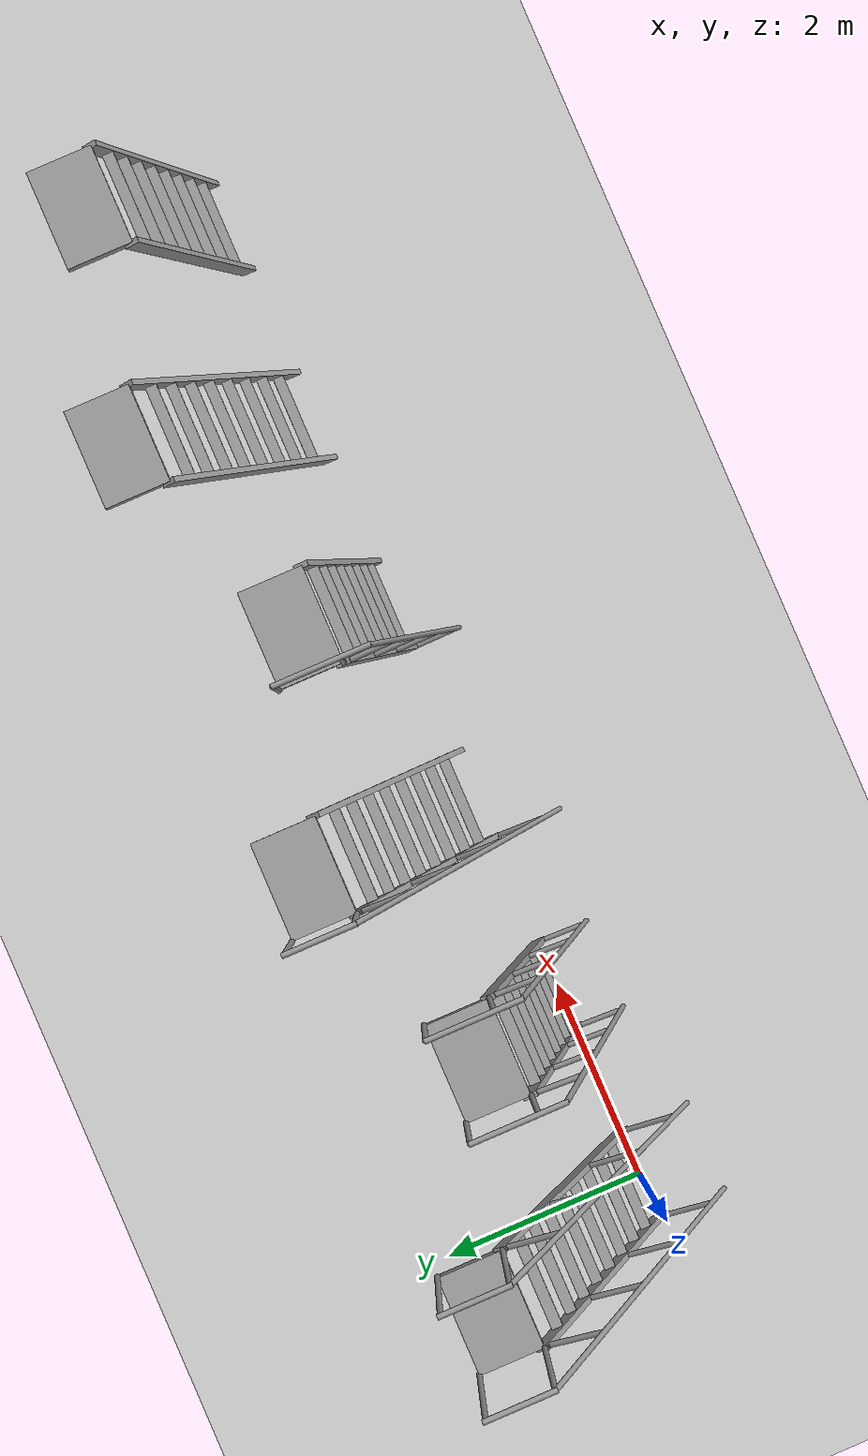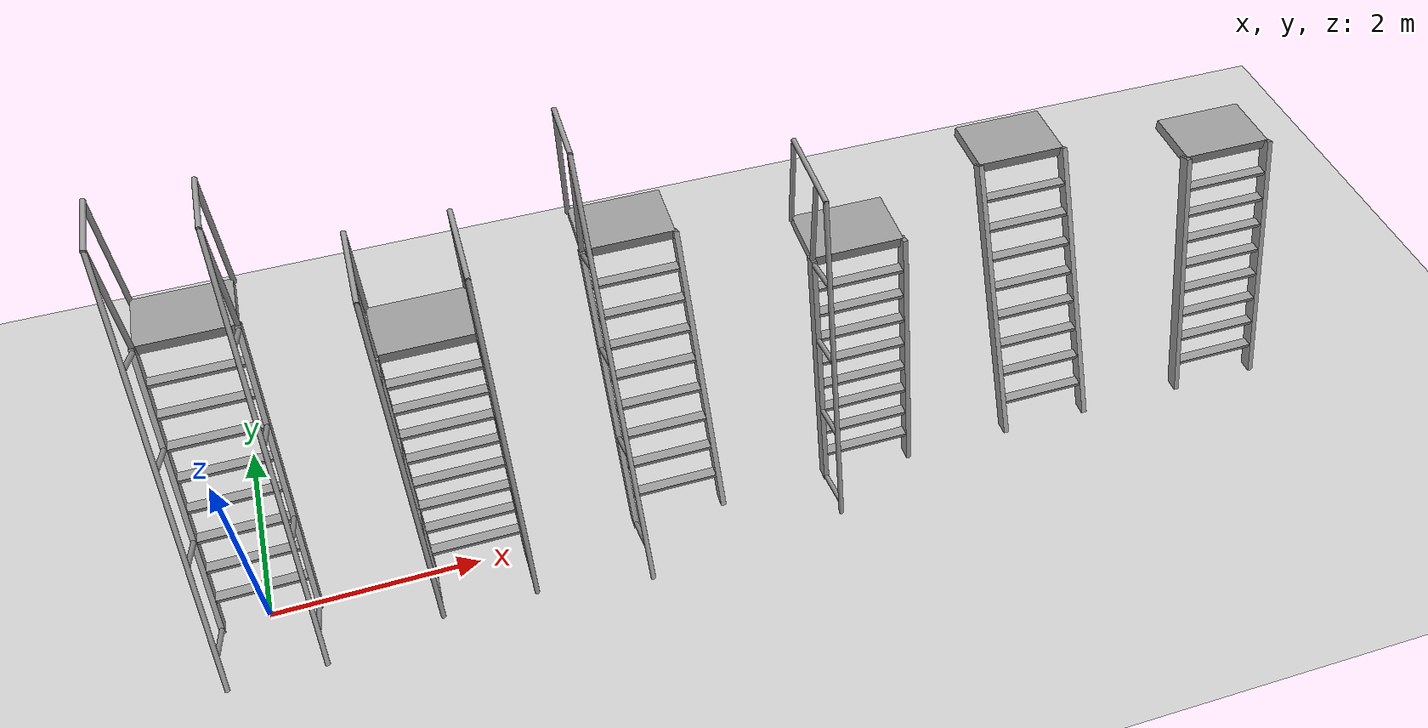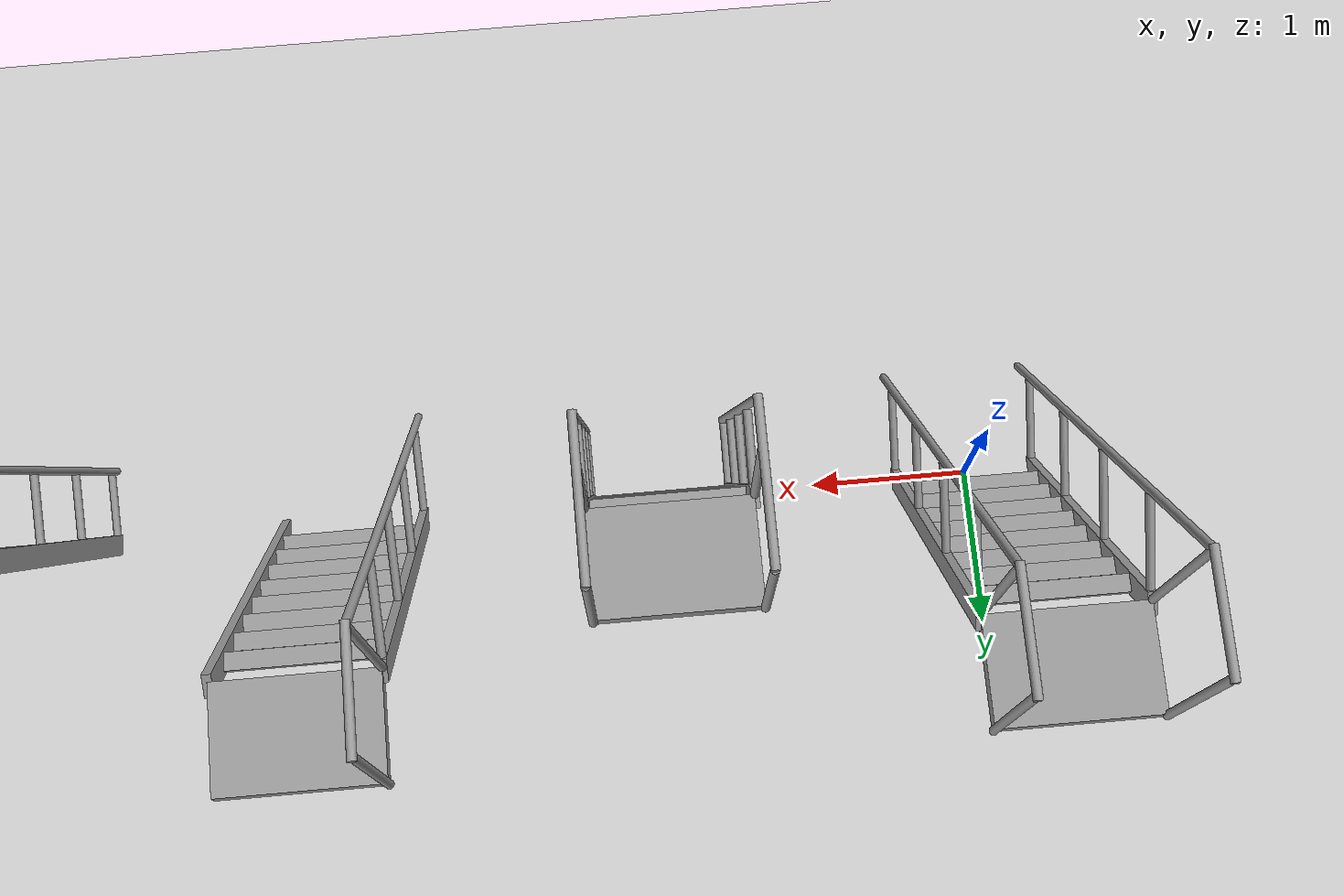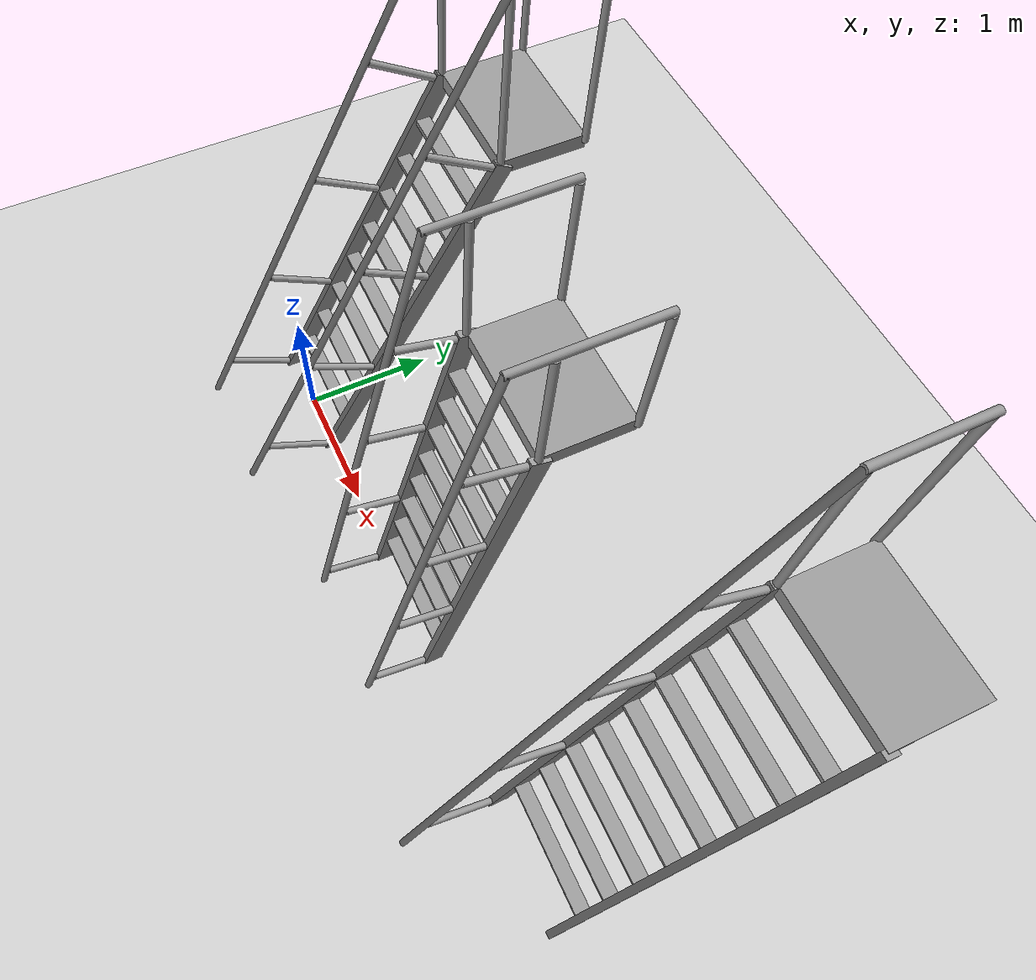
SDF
<?xml version="1.0" ?>
<sdf version="1.4">
  <world name="trials_task_3">
    <physics type="ode">
      <gravity>0 0 -9.81</gravity>
      <ode>
        <solver>
          <type>quick</type>
          <iters>50</iters>
          <sor>1.4</sor>
        </solver>
        <constraints>
          <cfm>0.0</cfm>
          <erp>0.2</erp>
          <contact_max_correcting_vel>100.0</contact_max_correcting_vel>
          <contact_surface_layer>0.0</contact_surface_layer>
        </constraints>
      </ode>
      <real_time_update_rate>1000</real_time_update_rate>
      <max_step_size>0.001</max_step_size>
    </physics>

    <!--A global light source -->
    <include>
      <uri>model://sun</uri>
    </include>

    <!-- A ground plane -->
    <include>
      <uri>model://ground_plane</uri>
    </include>

    <include>
      <name>ladder</name>
      <uri>model://ladder_60deg_2rails</uri>
    </include>

    <include>
      <name>ladder</name>
      <uri>model://ladder_75deg_2rails</uri>
      <pose>2 0 0 0 0 0</pose>
    </include>

    <include>
      <name>ladder</name>
      <uri>model://ladder_60deg_1rails</uri>
      <pose>4 0 0 0 0 0</pose>
    </include>

    <include>
      <name>ladder</name>
      <uri>model://ladder_75deg_1rails</uri>
      <pose>6 0 0 0 0 0</pose>
    </include>

    <include>
      <name>ladder</name>
      <uri>model://ladder_60deg_0rails</uri>
      <pose>8 0 0 0 0 0</pose>
    </include>

    <include>
      <name>ladder</name>
      <uri>model://ladder_75deg_0rails</uri>
      <pose>10 0 0 0 0 0</pose>
    </include>

    <plugin filename="libVRCPlugin.so" name="vrc_plugin">
      <atlas>
        <model_name>atlas</model_name>
        <pin_link>utorso</pin_link>
      </atlas>
      <drc_vehicle>
        <model_name>drc_vehicle_xp900</model_name>
        <seat_link>polaris_ranger_xp900::chassis</seat_link>
      </drc_vehicle>
      <drc_fire_hose>
        <fire_hose_model>fire_hose</fire_hose_model>
        <coupling_link>coupling</coupling_link>
        <standpipe_model>standpipe</standpipe_model>
        <spout_link>standpipe</spout_link>
        <thread_pitch>-1000</thread_pitch>
        <coupling_relative_pose>1.17038e-05 -0.125623 0.35 -0.0412152 -1.57078 1.61199</coupling_relative_pose>
      </drc_fire_hose>
    </plugin>

  </world>
</sdf>

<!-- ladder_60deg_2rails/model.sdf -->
<sdf version="1.5">

  <model name= "ladder_60deg_2rails" >
    <static>true</static>
         <link name="step0" >
           <pose>0 0.15396007178390025 0.26666666666666666 0 0 0 </pose>
           <inertial>
             <mass> 9.7548192</mass>
             <inertia>
             <ixx> 0.009571241631672</ixx>
             <iyy> 0.6596303120915761</iyy>
             <izz> 0.666841521540096</izz>
             <ixy>0</ixy>
             <ixz>0</ixz>
             <iyz>0</iyz>
             </inertia>
           </inertial>

           <collision name="collision">
             <geometry>
              <box>
                <size>  0.9  0.1016  0.0381  </size>
              </box>
             </geometry>
           </collision>

          <visual name="visual">
            <geometry>
              <box>
                <size>  0.9  0.1016  0.0381  </size>
              </box>
            </geometry>
            <material>
              <script>
                <uri>file://media/materials/scripts/gazebo.material</uri>
                <name>Gazebo/Grey</name>
              </script>
            </material>
          </visual>
        </link>
         <link name="step1" >
           <pose>0 0.3079201435678005 0.5333333333333333 0 0 0 </pose>
           <inertial>
             <mass> 9.7548192</mass>
             <inertia>
             <ixx> 0.009571241631672</ixx>
             <iyy> 0.6596303120915761</iyy>
             <izz> 0.666841521540096</izz>
             <ixy>0</ixy>
             <ixz>0</ixz>
             <iyz>0</iyz>
             </inertia>
           </inertial>

           <collision name="collision">
             <geometry>
              <box>
                <size>  0.9  0.1016  0.0381  </size>
              </box>
             </geometry>
           </collision>

          <visual name="visual">
            <geometry>
              <box>
                <size>  0.9  0.1016  0.0381  </size>
              </box>
            </geometry>
            <material>
              <script>
                <uri>file://media/materials/scripts/gazebo.material</uri>
                <name>Gazebo/Grey</name>
              </script>
            </material>
          </visual>
        </link>
         <link name="step2" >
           <pose>0 0.46188021535170076 0.8 0 0 0 </pose>
           <inertial>
             <mass> 9.7548192</mass>
             <inertia>
             <ixx> 0.009571241631672</ixx>
             <iyy> 0.6596303120915761</iyy>
             <izz> 0.666841521540096</izz>
             <ixy>0</ixy>
             <ixz>0</ixz>
             <iyz>0</iyz>
             </inertia>
           </inertial>

           <collision name="collision">
             <geometry>
              <box>
                <size>  0.9  0.1016  0.0381  </size>
              </box>
             </geometry>
           </collision>

          <visual name="visual">
            <geometry>
              <box>
                <size>  0.9  0.1016  0.0381  </size>
              </box>
            </geometry>
            <material>
              <script>
                <uri>file://media/materials/scripts/gazebo.material</uri>
                <name>Gazebo/Grey</name>
              </script>
            </material>
          </visual>
        </link>
         <link name="step3" >
           <pose>0 0.615840287135601 1.0666666666666667 0 0 0 </pose>
           <inertial>
             <mass> 9.7548192</mass>
             <inertia>
             <ixx> 0.009571241631672</ixx>
             <iyy> 0.6596303120915761</iyy>
             <izz> 0.666841521540096</izz>
             <ixy>0</ixy>
             <ixz>0</ixz>
             <iyz>0</iyz>
             </inertia>
           </inertial>

           <collision name="collision">
             <geometry>
              <box>
                <size>  0.9  0.1016  0.0381  </size>
              </box>
             </geometry>
           </collision>

          <visual name="visual">
            <geometry>
              <box>
                <size>  0.9  0.1016  0.0381  </size>
              </box>
            </geometry>
            <material>
              <script>
                <uri>file://media/materials/scripts/gazebo.material</uri>
                <name>Gazebo/Grey</name>
              </script>
            </material>
          </visual>
        </link>
         <link name="step4" >
           <pose>0 0.7698003589195013 1.3333333333333333 0 0 0 </pose>
           <inertial>
             <mass> 9.7548192</mass>
             <inertia>
             <ixx> 0.009571241631672</ixx>
             <iyy> 0.6596303120915761</iyy>
             <izz> 0.666841521540096</izz>
             <ixy>0</ixy>
             <ixz>0</ixz>
             <iyz>0</iyz>
             </inertia>
           </inertial>

           <collision name="collision">
             <geometry>
              <box>
                <size>  0.9  0.1016  0.0381  </size>
              </box>
             </geometry>
           </collision>

          <visual name="visual">
            <geometry>
              <box>
                <size>  0.9  0.1016  0.0381  </size>
              </box>
            </geometry>
            <material>
              <script>
                <uri>file://media/materials/scripts/gazebo.material</uri>
                <name>Gazebo/Grey</name>
              </script>
            </material>
          </visual>
        </link>
         <link name="step5" >
           <pose>0 0.9237604307034015 1.6 0 0 0 </pose>
           <inertial>
             <mass> 9.7548192</mass>
             <inertia>
             <ixx> 0.009571241631672</ixx>
             <iyy> 0.6596303120915761</iyy>
             <izz> 0.666841521540096</izz>
             <ixy>0</ixy>
             <ixz>0</ixz>
             <iyz>0</iyz>
             </inertia>
           </inertial>

           <collision name="collision">
             <geometry>
              <box>
                <size>  0.9  0.1016  0.0381  </size>
              </box>
             </geometry>
           </collision>

          <visual name="visual">
            <geometry>
              <box>
                <size>  0.9  0.1016  0.0381  </size>
              </box>
            </geometry>
            <material>
              <script>
                <uri>file://media/materials/scripts/gazebo.material</uri>
                <name>Gazebo/Grey</name>
              </script>
            </material>
          </visual>
        </link>
         <link name="step6" >
           <pose>0 1.0777205024873018 1.8666666666666667 0 0 0 </pose>
           <inertial>
             <mass> 9.7548192</mass>
             <inertia>
             <ixx> 0.009571241631672</ixx>
             <iyy> 0.6596303120915761</iyy>
             <izz> 0.666841521540096</izz>
             <ixy>0</ixy>
             <ixz>0</ixz>
             <iyz>0</iyz>
             </inertia>
           </inertial>

           <collision name="collision">
             <geometry>
              <box>
                <size>  0.9  0.1016  0.0381  </size>
              </box>
             </geometry>
           </collision>

          <visual name="visual">
            <geometry>
              <box>
                <size>  0.9  0.1016  0.0381  </size>
              </box>
            </geometry>
            <material>
              <script>
                <uri>file://media/materials/scripts/gazebo.material</uri>
                <name>Gazebo/Grey</name>
              </script>
            </material>
          </visual>
        </link>
         <link name="step7" >
           <pose>0 1.231680574271202 2.1333333333333333 0 0 0 </pose>
           <inertial>
             <mass> 9.7548192</mass>
             <inertia>
             <ixx> 0.009571241631672</ixx>
             <iyy> 0.6596303120915761</iyy>
             <izz> 0.666841521540096</izz>
             <ixy>0</ixy>
             <ixz>0</ixz>
             <iyz>0</iyz>
             </inertia>
           </inertial>

           <collision name="collision">
             <geometry>
              <box>
                <size>  0.9  0.1016  0.0381  </size>
              </box>
             </geometry>
           </collision>

          <visual name="visual">
            <geometry>
              <box>
                <size>  0.9  0.1016  0.0381  </size>
              </box>
            </geometry>
            <material>
              <script>
                <uri>file://media/materials/scripts/gazebo.material</uri>
                <name>Gazebo/Grey</name>
              </script>
            </material>
          </visual>
        </link>
    <link name="landing">
      <pose>0 1.6856406460551023 2.4 0 0 0 </pose>
        <inertial>
          <mass> 57.607200000000006</mass>
          <inertia>
          <ixx> 1.735184598966</ixx>
          <iyy> 3.8954545989660008</iyy>
          <izz> 5.616702</izz>
          <ixy>0</ixy>
          <ixz>0</ixz>
          <iyz>0</iyz>
          </inertia>
        </inertial>

        <collision name="collision">
          <geometry>
           <box>
             <size> 0.9 0.6 0.1016</size>
           </box>
          </geometry>
        </collision>

        <visual name="visual">
          <geometry>
            <box>
             <size> 0.9 0.6 0.1016</size>
            </box>
          </geometry>
          <material>
            <script>
              <uri>file://media/materials/scripts/gazebo.material</uri>
              <name>Gazebo/Grey</name>
            </script>
          </material>
        </visual>
    </link>

      <link name="left_side_wall" >
        <pose>-0.45 0.6928203230275511 1.2 1.0471975511965976 0 0 </pose>
        <collision name="collision">
          <geometry>
            <box>
              <size> 0.0508  2.851281292110204  0.13 </size>
            </box>
          </geometry>
        </collision>

        <visual name="visual">
          <geometry>
            <box>
              <size> 0.0508  2.851281292110204  0.13 </size>
            </box>
          </geometry>
          <material>
            <script>
              <uri>file://media/materials/scripts/gazebo.material</uri>
              <name>Gazebo/Grey</name>
            </script>
          </material>
        </visual>

      </link>
      <link name="right_side_wall" >
        <pose>0.45 0.6928203230275511 1.2 1.0471975511965976 0 0 </pose>
        <collision name="collision">
          <geometry>
            <box>
              <size> 0.0508  2.851281292110204  0.13 </size>
            </box>
          </geometry>
        </collision>

        <visual name="visual">
          <geometry>
            <box>
              <size> 0.0508  2.851281292110204  0.13 </size>
            </box>
          </geometry>
          <material>
            <script>
              <uri>file://media/materials/scripts/gazebo.material</uri>
              <name>Gazebo/Grey</name>
            </script>
          </material>
        </visual>

      </link>
         <link name="left_railing_long" >
           <pose>-0.45 0.34282032302755117 1.8062177826491068 -0.5235987755982989 0 0 </pose>

            <collision name="collision">
              <geometry>
                <cylinder>
                  <radius>0.02413</radius>
                  <length>4.171281292110204</length>
                </cylinder>
              </geometry>
            </collision>

            <visual name="visual">
              <geometry>
                <cylinder>
                  <radius>0.02413</radius>
                  <length>4.171281292110204</length>
                </cylinder>
              </geometry>
              <material>
                <script>
                  <uri>file://media/materials/scripts/gazebo.material</uri>
                  <name>Gazebo/Grey</name>
                </script>
              </material>
            </visual>
         </link>
              <link name="left_railing_upright0" >
                <pose> -0.45 -0.2749630657015592 0.15875 1.0471975511965976 0 0 </pose>

                <collision name="collision">
                  <geometry>
                    <cylinder>
                      <radius>0.02413</radius>
                      <length>0.5412177826491069</length>
                    </cylinder>
                  </geometry>
                </collision>

                <visual name="visual">
                  <geometry>
                    <cylinder>
                      <radius>0.02413</radius>
                      <length>0.5412177826491069</length>
                    </cylinder>
                  </geometry>
                  <material>
                    <script>
                      <uri>file://media/materials/scripts/gazebo.material</uri>
                      <name>Gazebo/Grey</name>
                    </script>
                  </material>
                </visual>
              </link>
              <link name="left_railing_upright1" >
                <pose> -0.45 0.18691714965014153 0.95875 1.0471975511965976 0 0 </pose>

                <collision name="collision">
                  <geometry>
                    <cylinder>
                      <radius>0.02413</radius>
                      <length>0.5412177826491069</length>
                    </cylinder>
                  </geometry>
                </collision>

                <visual name="visual">
                  <geometry>
                    <cylinder>
                      <radius>0.02413</radius>
                      <length>0.5412177826491069</length>
                    </cylinder>
                  </geometry>
                  <material>
                    <script>
                      <uri>file://media/materials/scripts/gazebo.material</uri>
                      <name>Gazebo/Grey</name>
                    </script>
                  </material>
                </visual>
              </link>
              <link name="left_railing_upright2" >
                <pose> -0.45 0.6487973650018424 1.7587499999999998 1.0471975511965976 0 0 </pose>

                <collision name="collision">
                  <geometry>
                    <cylinder>
                      <radius>0.02413</radius>
                      <length>0.5412177826491069</length>
                    </cylinder>
                  </geometry>
                </collision>

                <visual name="visual">
                  <geometry>
                    <cylinder>
                      <radius>0.02413</radius>
                      <length>0.5412177826491069</length>
                    </cylinder>
                  </geometry>
                  <material>
                    <script>
                      <uri>file://media/materials/scripts/gazebo.material</uri>
                      <name>Gazebo/Grey</name>
                    </script>
                  </material>
                </visual>
              </link>
              <link name="left_railing_upright3" >
                <pose> -0.45 1.1106775803535431 2.55875 1.0471975511965976 0 0 </pose>

                <collision name="collision">
                  <geometry>
                    <cylinder>
                      <radius>0.02413</radius>
                      <length>0.5412177826491069</length>
                    </cylinder>
                  </geometry>
                </collision>

                <visual name="visual">
                  <geometry>
                    <cylinder>
                      <radius>0.02413</radius>
                      <length>0.5412177826491069</length>
                    </cylinder>
                  </geometry>
                  <material>
                    <script>
                      <uri>file://media/materials/scripts/gazebo.material</uri>
                      <name>Gazebo/Grey</name>
                    </script>
                  </material>
                </visual>
              </link>

         <link name="left_railing_landing_top" >

           <pose> -0.45 1.6856406460551023 3.6124355652982136 1.5707963267948966 0 0 </pose>

           <collision name="collision">
             <geometry>
               <cylinder>
                 <radius>0.02413</radius>
                 <length>0.64826</length>
               </cylinder>
             </geometry>
           </collision>

           <visual name="visual">
             <geometry>
               <cylinder>
                 <radius>0.02413</radius>
                 <length>0.64826</length>
               </cylinder>
             </geometry>
             <material>
               <script>
                 <uri>file://media/materials/scripts/gazebo.material</uri>
                 <name>Gazebo/Grey</name>
               </script>
             </material>
           </visual>
         </link>

            <link name="left_railing_landing_upright_0">
              <pose>-0.45 1.3856406460551023 3.0062177826491068 0 0 0</pose>
              <collision name="collision">
                <geometry>
                  <cylinder>
                    <radius>0.02413</radius>
                    <length>1.2124355652982137</length>
                  </cylinder>
                </geometry>
              </collision>

              <visual name="visual">
                <geometry>
                  <cylinder>
                    <radius>0.02413</radius>
                    <length>1.2124355652982137</length>
                  </cylinder>
                </geometry>
                <material>
                  <script>
                    <uri>file://media/materials/scripts/gazebo.material</uri>
                    <name>Gazebo/Grey</name>
                  </script>
                </material>
              </visual>
            </link>
            <link name="left_railing_landing_upright_1">
              <pose>-0.45 1.9856406460551024 3.0062177826491068 0 0 0</pose>
              <collision name="collision">
                <geometry>
                  <cylinder>
                    <radius>0.02413</radius>
                    <length>1.2124355652982137</length>
                  </cylinder>
                </geometry>
              </collision>

              <visual name="visual">
                <geometry>
                  <cylinder>
                    <radius>0.02413</radius>
                    <length>1.2124355652982137</length>
                  </cylinder>
                </geometry>
                <material>
                  <script>
                    <uri>file://media/materials/scripts/gazebo.material</uri>
                    <name>Gazebo/Grey</name>
                  </script>
                </material>
              </visual>
            </link>

         <link name="right_railing_long" >
           <pose>0.45 0.34282032302755117 1.8062177826491068 -0.5235987755982989 0 0 </pose>

            <collision name="collision">
              <geometry>
                <cylinder>
                  <radius>0.02413</radius>
                  <length>4.171281292110204</length>
                </cylinder>
              </geometry>
            </collision>

            <visual name="visual">
              <geometry>
                <cylinder>
                  <radius>0.02413</radius>
                  <length>4.171281292110204</length>
                </cylinder>
              </geometry>
              <material>
                <script>
                  <uri>file://media/materials/scripts/gazebo.material</uri>
                  <name>Gazebo/Grey</name>
                </script>
              </material>
            </visual>
         </link>
              <link name="right_railing_upright0" >
                <pose> 0.45 -0.2749630657015592 0.15875 1.0471975511965976 0 0 </pose>

                <collision name="collision">
                  <geometry>
                    <cylinder>
                      <radius>0.02413</radius>
                      <length>0.5412177826491069</length>
                    </cylinder>
                  </geometry>
                </collision>

                <visual name="visual">
                  <geometry>
                    <cylinder>
                      <radius>0.02413</radius>
                      <length>0.5412177826491069</length>
                    </cylinder>
                  </geometry>
                  <material>
                    <script>
                      <uri>file://media/materials/scripts/gazebo.material</uri>
                      <name>Gazebo/Grey</name>
                    </script>
                  </material>
                </visual>
              </link>
              <link name="right_railing_upright1" >
                <pose> 0.45 0.18691714965014153 0.95875 1.0471975511965976 0 0 </pose>

                <collision name="collision">
                  <geometry>
                    <cylinder>
                      <radius>0.02413</radius>
                      <length>0.5412177826491069</length>
                    </cylinder>
                  </geometry>
                </collision>

                <visual name="visual">
                  <geometry>
                    <cylinder>
                      <radius>0.02413</radius>
                      <length>0.5412177826491069</length>
                    </cylinder>
                  </geometry>
                  <material>
                    <script>
                      <uri>file://media/materials/scripts/gazebo.material</uri>
                      <name>Gazebo/Grey</name>
                    </script>
                  </material>
                </visual>
              </link>
              <link name="right_railing_upright2" >
                <pose> 0.45 0.6487973650018424 1.7587499999999998 1.0471975511965976 0 0 </pose>

                <collision name="collision">
                  <geometry>
                    <cylinder>
                      <radius>0.02413</radius>
                      <length>0.5412177826491069</length>
                    </cylinder>
                  </geometry>
                </collision>

                <visual name="visual">
                  <geometry>
                    <cylinder>
                      <radius>0.02413</radius>
                      <length>0.5412177826491069</length>
                    </cylinder>
                  </geometry>
                  <material>
                    <script>
                      <uri>file://media/materials/scripts/gazebo.material</uri>
                      <name>Gazebo/Grey</name>
                    </script>
                  </material>
                </visual>
              </link>
              <link name="right_railing_upright3" >
                <pose> 0.45 1.1106775803535431 2.55875 1.0471975511965976 0 0 </pose>

                <collision name="collision">
                  <geometry>
                    <cylinder>
                      <radius>0.02413</radius>
                      <length>0.5412177826491069</length>
                    </cylinder>
                  </geometry>
                </collision>

                <visual name="visual">
                  <geometry>
                    <cylinder>
                      <radius>0.02413</radius>
                      <length>0.5412177826491069</length>
                    </cylinder>
                  </geometry>
                  <material>
                    <script>
                      <uri>file://media/materials/scripts/gazebo.material</uri>
                      <name>Gazebo/Grey</name>
                    </script>
                  </material>
                </visual>
              </link>

         <link name="right_railing_landing_top" >

           <pose> 0.45 1.6856406460551023 3.6124355652982136 1.5707963267948966 0 0 </pose>

           <collision name="collision">
             <geometry>
               <cylinder>
                 <radius>0.02413</radius>
                 <length>0.64826</length>
               </cylinder>
             </geometry>
           </collision>

           <visual name="visual">
             <geometry>
               <cylinder>
                 <radius>0.02413</radius>
                 <length>0.64826</length>
               </cylinder>
             </geometry>
             <material>
               <script>
                 <uri>file://media/materials/scripts/gazebo.material</uri>
                 <name>Gazebo/Grey</name>
               </script>
             </material>
           </visual>
         </link>

            <link name="right_railing_landing_upright_0">
              <pose>0.45 1.3856406460551023 3.0062177826491068 0 0 0</pose>
              <collision name="collision">
                <geometry>
                  <cylinder>
                    <radius>0.02413</radius>
                    <length>1.2124355652982137</length>
                  </cylinder>
                </geometry>
              </collision>

              <visual name="visual">
                <geometry>
                  <cylinder>
                    <radius>0.02413</radius>
                    <length>1.2124355652982137</length>
                  </cylinder>
                </geometry>
                <material>
                  <script>
                    <uri>file://media/materials/scripts/gazebo.material</uri>
                    <name>Gazebo/Grey</name>
                  </script>
                </material>
              </visual>
            </link>
            <link name="right_railing_landing_upright_1">
              <pose>0.45 1.9856406460551024 3.0062177826491068 0 0 0</pose>
              <collision name="collision">
                <geometry>
                  <cylinder>
                    <radius>0.02413</radius>
                    <length>1.2124355652982137</length>
                  </cylinder>
                </geometry>
              </collision>

              <visual name="visual">
                <geometry>
                  <cylinder>
                    <radius>0.02413</radius>
                    <length>1.2124355652982137</length>
                  </cylinder>
                </geometry>
                <material>
                  <script>
                    <uri>file://media/materials/scripts/gazebo.material</uri>
                    <name>Gazebo/Grey</name>
                  </script>
                </material>
              </visual>
            </link>

  </model>
</sdf>

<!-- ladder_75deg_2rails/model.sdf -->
<sdf version="1.5">

  <model name= "ladder_75deg_2rails" >
    <static>true</static>
         <link name="step0" >
           <pose>0 0.07145311798163272 0.26666666666666666 0 0 0 </pose>
           <inertial>
             <mass> 9.7548192</mass>
             <inertia>
             <ixx> 0.009571241631672</ixx>
             <iyy> 0.6596303120915761</iyy>
             <izz> 0.666841521540096</izz>
             <ixy>0</ixy>
             <ixz>0</ixz>
             <iyz>0</iyz>
             </inertia>
           </inertial>

           <collision name="collision">
             <geometry>
              <box>
                <size>  0.9  0.1016  0.0381  </size>
              </box>
             </geometry>
           </collision>

          <visual name="visual">
            <geometry>
              <box>
                <size>  0.9  0.1016  0.0381  </size>
              </box>
            </geometry>
            <material>
              <script>
                <uri>file://media/materials/scripts/gazebo.material</uri>
                <name>Gazebo/Grey</name>
              </script>
            </material>
          </visual>
        </link>
         <link name="step1" >
           <pose>0 0.14290623596326543 0.5333333333333333 0 0 0 </pose>
           <inertial>
             <mass> 9.7548192</mass>
             <inertia>
             <ixx> 0.009571241631672</ixx>
             <iyy> 0.6596303120915761</iyy>
             <izz> 0.666841521540096</izz>
             <ixy>0</ixy>
             <ixz>0</ixz>
             <iyz>0</iyz>
             </inertia>
           </inertial>

           <collision name="collision">
             <geometry>
              <box>
                <size>  0.9  0.1016  0.0381  </size>
              </box>
             </geometry>
           </collision>

          <visual name="visual">
            <geometry>
              <box>
                <size>  0.9  0.1016  0.0381  </size>
              </box>
            </geometry>
            <material>
              <script>
                <uri>file://media/materials/scripts/gazebo.material</uri>
                <name>Gazebo/Grey</name>
              </script>
            </material>
          </visual>
        </link>
         <link name="step2" >
           <pose>0 0.21435935394489813 0.8 0 0 0 </pose>
           <inertial>
             <mass> 9.7548192</mass>
             <inertia>
             <ixx> 0.009571241631672</ixx>
             <iyy> 0.6596303120915761</iyy>
             <izz> 0.666841521540096</izz>
             <ixy>0</ixy>
             <ixz>0</ixz>
             <iyz>0</iyz>
             </inertia>
           </inertial>

           <collision name="collision">
             <geometry>
              <box>
                <size>  0.9  0.1016  0.0381  </size>
              </box>
             </geometry>
           </collision>

          <visual name="visual">
            <geometry>
              <box>
                <size>  0.9  0.1016  0.0381  </size>
              </box>
            </geometry>
            <material>
              <script>
                <uri>file://media/materials/scripts/gazebo.material</uri>
                <name>Gazebo/Grey</name>
              </script>
            </material>
          </visual>
        </link>
         <link name="step3" >
           <pose>0 0.28581247192653086 1.0666666666666667 0 0 0 </pose>
           <inertial>
             <mass> 9.7548192</mass>
             <inertia>
             <ixx> 0.009571241631672</ixx>
             <iyy> 0.6596303120915761</iyy>
             <izz> 0.666841521540096</izz>
             <ixy>0</ixy>
             <ixz>0</ixz>
             <iyz>0</iyz>
             </inertia>
           </inertial>

           <collision name="collision">
             <geometry>
              <box>
                <size>  0.9  0.1016  0.0381  </size>
              </box>
             </geometry>
           </collision>

          <visual name="visual">
            <geometry>
              <box>
                <size>  0.9  0.1016  0.0381  </size>
              </box>
            </geometry>
            <material>
              <script>
                <uri>file://media/materials/scripts/gazebo.material</uri>
                <name>Gazebo/Grey</name>
              </script>
            </material>
          </visual>
        </link>
         <link name="step4" >
           <pose>0 0.3572655899081636 1.3333333333333333 0 0 0 </pose>
           <inertial>
             <mass> 9.7548192</mass>
             <inertia>
             <ixx> 0.009571241631672</ixx>
             <iyy> 0.6596303120915761</iyy>
             <izz> 0.666841521540096</izz>
             <ixy>0</ixy>
             <ixz>0</ixz>
             <iyz>0</iyz>
             </inertia>
           </inertial>

           <collision name="collision">
             <geometry>
              <box>
                <size>  0.9  0.1016  0.0381  </size>
              </box>
             </geometry>
           </collision>

          <visual name="visual">
            <geometry>
              <box>
                <size>  0.9  0.1016  0.0381  </size>
              </box>
            </geometry>
            <material>
              <script>
                <uri>file://media/materials/scripts/gazebo.material</uri>
                <name>Gazebo/Grey</name>
              </script>
            </material>
          </visual>
        </link>
         <link name="step5" >
           <pose>0 0.42871870788979627 1.6 0 0 0 </pose>
           <inertial>
             <mass> 9.7548192</mass>
             <inertia>
             <ixx> 0.009571241631672</ixx>
             <iyy> 0.6596303120915761</iyy>
             <izz> 0.666841521540096</izz>
             <ixy>0</ixy>
             <ixz>0</ixz>
             <iyz>0</iyz>
             </inertia>
           </inertial>

           <collision name="collision">
             <geometry>
              <box>
                <size>  0.9  0.1016  0.0381  </size>
              </box>
             </geometry>
           </collision>

          <visual name="visual">
            <geometry>
              <box>
                <size>  0.9  0.1016  0.0381  </size>
              </box>
            </geometry>
            <material>
              <script>
                <uri>file://media/materials/scripts/gazebo.material</uri>
                <name>Gazebo/Grey</name>
              </script>
            </material>
          </visual>
        </link>
         <link name="step6" >
           <pose>0 0.500171825871429 1.8666666666666667 0 0 0 </pose>
           <inertial>
             <mass> 9.7548192</mass>
             <inertia>
             <ixx> 0.009571241631672</ixx>
             <iyy> 0.6596303120915761</iyy>
             <izz> 0.666841521540096</izz>
             <ixy>0</ixy>
             <ixz>0</ixz>
             <iyz>0</iyz>
             </inertia>
           </inertial>

           <collision name="collision">
             <geometry>
              <box>
                <size>  0.9  0.1016  0.0381  </size>
              </box>
             </geometry>
           </collision>

          <visual name="visual">
            <geometry>
              <box>
                <size>  0.9  0.1016  0.0381  </size>
              </box>
            </geometry>
            <material>
              <script>
                <uri>file://media/materials/scripts/gazebo.material</uri>
                <name>Gazebo/Grey</name>
              </script>
            </material>
          </visual>
        </link>
         <link name="step7" >
           <pose>0 0.5716249438530617 2.1333333333333333 0 0 0 </pose>
           <inertial>
             <mass> 9.7548192</mass>
             <inertia>
             <ixx> 0.009571241631672</ixx>
             <iyy> 0.6596303120915761</iyy>
             <izz> 0.666841521540096</izz>
             <ixy>0</ixy>
             <ixz>0</ixz>
             <iyz>0</iyz>
             </inertia>
           </inertial>

           <collision name="collision">
             <geometry>
              <box>
                <size>  0.9  0.1016  0.0381  </size>
              </box>
             </geometry>
           </collision>

          <visual name="visual">
            <geometry>
              <box>
                <size>  0.9  0.1016  0.0381  </size>
              </box>
            </geometry>
            <material>
              <script>
                <uri>file://media/materials/scripts/gazebo.material</uri>
                <name>Gazebo/Grey</name>
              </script>
            </material>
          </visual>
        </link>
    <link name="landing">
      <pose>0 0.9430780618346943 2.4 0 0 0 </pose>
        <inertial>
          <mass> 57.607200000000006</mass>
          <inertia>
          <ixx> 1.735184598966</ixx>
          <iyy> 3.8954545989660008</iyy>
          <izz> 5.616702</izz>
          <ixy>0</ixy>
          <ixz>0</ixz>
          <iyz>0</iyz>
          </inertia>
        </inertial>

        <collision name="collision">
          <geometry>
           <box>
             <size> 0.9 0.6 0.1016</size>
           </box>
          </geometry>
        </collision>

        <visual name="visual">
          <geometry>
            <box>
             <size> 0.9 0.6 0.1016</size>
            </box>
          </geometry>
          <material>
            <script>
              <uri>file://media/materials/scripts/gazebo.material</uri>
              <name>Gazebo/Grey</name>
            </script>
          </material>
        </visual>
    </link>

      <link name="left_side_wall" >
        <pose>-0.45 0.3215390309173472 1.2 1.3089969389957472 0 0 </pose>
        <collision name="collision">
          <geometry>
            <box>
              <size> 0.0508  2.564662832984199  0.13 </size>
            </box>
          </geometry>
        </collision>

        <visual name="visual">
          <geometry>
            <box>
              <size> 0.0508  2.564662832984199  0.13 </size>
            </box>
          </geometry>
          <material>
            <script>
              <uri>file://media/materials/scripts/gazebo.material</uri>
              <name>Gazebo/Grey</name>
            </script>
          </material>
        </visual>

      </link>
      <link name="right_side_wall" >
        <pose>0.45 0.3215390309173472 1.2 1.3089969389957472 0 0 </pose>
        <collision name="collision">
          <geometry>
            <box>
              <size> 0.0508  2.564662832984199  0.13 </size>
            </box>
          </geometry>
        </collision>

        <visual name="visual">
          <geometry>
            <box>
              <size> 0.0508  2.564662832984199  0.13 </size>
            </box>
          </geometry>
          <material>
            <script>
              <uri>file://media/materials/scripts/gazebo.material</uri>
              <name>Gazebo/Grey</name>
            </script>
          </material>
        </visual>

      </link>

         <link name="left_railing_long" >
           <pose>-0.45 -0.0534609690826528 1.6665063509461095 -0.26179938779914935 0 0 </pose>

            <collision name="collision">
              <geometry>
                <cylinder>
                  <radius>0.02413</radius>
                  <length>3.5152934205488977</length>
                </cylinder>
              </geometry>
            </collision>

            <visual name="visual">
              <geometry>
                <cylinder>
                  <radius>0.02413</radius>
                  <length>3.5152934205488977</length>
                </cylinder>
              </geometry>
              <material>
                <script>
                  <uri>file://media/materials/scripts/gazebo.material</uri>
                  <name>Gazebo/Grey</name>
                </script>
              </material>
            </visual>
         </link>

              <link name="left_railing_upright0" >
                <pose> -0.45 -0.21008886721787234 0.05629314230979826 1.3089969389957472 0 0 </pose>

                <collision name="collision">
                  <geometry>
                    <cylinder>
                      <radius>0.02413</radius>
                      <length>0.48296291314453416</length>
                    </cylinder>
                  </geometry>
                </collision>

                <visual name="visual">
                  <geometry>
                    <cylinder>
                      <radius>0.02413</radius>
                      <length>0.48296291314453416</length>
                    </cylinder>
                  </geometry>
                  <material>
                    <script>
                      <uri>file://media/materials/scripts/gazebo.material</uri>
                      <name>Gazebo/Grey</name>
                    </script>
                  </material>
                </visual>
              </link>
              <link name="left_railing_upright1" >
                <pose> -0.45 0.004270486727025777 0.8562931423097981 1.3089969389957472 0 0 </pose>

                <collision name="collision">
                  <geometry>
                    <cylinder>
                      <radius>0.02413</radius>
                      <length>0.48296291314453416</length>
                    </cylinder>
                  </geometry>
                </collision>

                <visual name="visual">
                  <geometry>
                    <cylinder>
                      <radius>0.02413</radius>
                      <length>0.48296291314453416</length>
                    </cylinder>
                  </geometry>
                  <material>
                    <script>
                      <uri>file://media/materials/scripts/gazebo.material</uri>
                      <name>Gazebo/Grey</name>
                    </script>
                  </material>
                </visual>
              </link>
              <link name="left_railing_upright2" >
                <pose> -0.45 0.21862984067192393 1.6562931423097982 1.3089969389957472 0 0 </pose>

                <collision name="collision">
                  <geometry>
                    <cylinder>
                      <radius>0.02413</radius>
                      <length>0.48296291314453416</length>
                    </cylinder>
                  </geometry>
                </collision>

                <visual name="visual">
                  <geometry>
                    <cylinder>
                      <radius>0.02413</radius>
                      <length>0.48296291314453416</length>
                    </cylinder>
                  </geometry>
                  <material>
                    <script>
                      <uri>file://media/materials/scripts/gazebo.material</uri>
                      <name>Gazebo/Grey</name>
                    </script>
                  </material>
                </visual>
              </link>
              <link name="left_railing_upright3" >
                <pose> -0.45 0.43298919461682206 2.4562931423097982 1.3089969389957472 0 0 </pose>

                <collision name="collision">
                  <geometry>
                    <cylinder>
                      <radius>0.02413</radius>
                      <length>0.48296291314453416</length>
                    </cylinder>
                  </geometry>
                </collision>

                <visual name="visual">
                  <geometry>
                    <cylinder>
                      <radius>0.02413</radius>
                      <length>0.48296291314453416</length>
                    </cylinder>
                  </geometry>
                  <material>
                    <script>
                      <uri>file://media/materials/scripts/gazebo.material</uri>
                      <name>Gazebo/Grey</name>
                    </script>
                  </material>
                </visual>
              </link>

         <link name="left_railing_landing_top" >

           <pose> -0.45 0.8180780618346943 3.357142701892219 1.5707963267948966 0 0 </pose>

           <collision name="collision">
             <geometry>
               <cylinder>
                 <radius>0.02413</radius>
                 <length>0.87413</length>
               </cylinder>
             </geometry>
           </collision>

           <visual name="visual">
             <geometry>
               <cylinder>
                 <radius>0.02413</radius>
                 <length>0.87413</length>
               </cylinder>
             </geometry>
             <material>
               <script>
                 <uri>file://media/materials/scripts/gazebo.material</uri>
                 <name>Gazebo/Grey</name>
               </script>
             </material>
           </visual>
         </link>

            <link name="left_railing_landing_upright_0">
              <pose>-0.45 0.6430780618346944 2.8665063509461097 0 0 0</pose>
              <collision name="collision">
                <geometry>
                  <cylinder>
                    <radius>0.02413</radius>
                    <length>0.9330127018922194</length>
                  </cylinder>
                </geometry>
              </collision>

              <visual name="visual">
                <geometry>
                  <cylinder>
                    <radius>0.02413</radius>
                    <length>0.9330127018922194</length>
                  </cylinder>
                </geometry>
                <material>
                  <script>
                    <uri>file://media/materials/scripts/gazebo.material</uri>
                    <name>Gazebo/Grey</name>
                  </script>
                </material>
              </visual>
            </link>
            <link name="left_railing_landing_upright_1">
              <pose>-0.45 1.2430780618346944 2.8665063509461097 0 0 0</pose>
              <collision name="collision">
                <geometry>
                  <cylinder>
                    <radius>0.02413</radius>
                    <length>0.9330127018922194</length>
                  </cylinder>
                </geometry>
              </collision>

              <visual name="visual">
                <geometry>
                  <cylinder>
                    <radius>0.02413</radius>
                    <length>0.9330127018922194</length>
                  </cylinder>
                </geometry>
                <material>
                  <script>
                    <uri>file://media/materials/scripts/gazebo.material</uri>
                    <name>Gazebo/Grey</name>
                  </script>
                </material>
              </visual>
            </link>

         <link name="right_railing_long" >
           <pose>0.45 -0.0534609690826528 1.6665063509461095 -0.26179938779914935 0 0 </pose>

            <collision name="collision">
              <geometry>
                <cylinder>
                  <radius>0.02413</radius>
                  <length>3.5152934205488977</length>
                </cylinder>
              </geometry>
            </collision>

            <visual name="visual">
              <geometry>
                <cylinder>
                  <radius>0.02413</radius>
                  <length>3.5152934205488977</length>
                </cylinder>
              </geometry>
              <material>
                <script>
                  <uri>file://media/materials/scripts/gazebo.material</uri>
                  <name>Gazebo/Grey</name>
                </script>
              </material>
            </visual>
         </link>

              <link name="right_railing_upright0" >
                <pose> 0.45 -0.21008886721787234 0.05629314230979826 1.3089969389957472 0 0 </pose>

                <collision name="collision">
                  <geometry>
                    <cylinder>
                      <radius>0.02413</radius>
                      <length>0.48296291314453416</length>
                    </cylinder>
                  </geometry>
                </collision>

                <visual name="visual">
                  <geometry>
                    <cylinder>
                      <radius>0.02413</radius>
                      <length>0.48296291314453416</length>
                    </cylinder>
                  </geometry>
                  <material>
                    <script>
                      <uri>file://media/materials/scripts/gazebo.material</uri>
                      <name>Gazebo/Grey</name>
                    </script>
                  </material>
                </visual>
              </link>
              <link name="right_railing_upright1" >
                <pose> 0.45 0.004270486727025777 0.8562931423097981 1.3089969389957472 0 0 </pose>

                <collision name="collision">
                  <geometry>
                    <cylinder>
                      <radius>0.02413</radius>
                      <length>0.48296291314453416</length>
                    </cylinder>
                  </geometry>
                </collision>

                <visual name="visual">
                  <geometry>
                    <cylinder>
                      <radius>0.02413</radius>
                      <length>0.48296291314453416</length>
                    </cylinder>
                  </geometry>
                  <material>
                    <script>
                      <uri>file://media/materials/scripts/gazebo.material</uri>
                      <name>Gazebo/Grey</name>
                    </script>
                  </material>
                </visual>
              </link>
              <link name="right_railing_upright2" >
                <pose> 0.45 0.21862984067192393 1.6562931423097982 1.3089969389957472 0 0 </pose>

                <collision name="collision">
                  <geometry>
                    <cylinder>
                      <radius>0.02413</radius>
                      <length>0.48296291314453416</length>
                    </cylinder>
                  </geometry>
                </collision>

                <visual name="visual">
                  <geometry>
                    <cylinder>
                      <radius>0.02413</radius>
                      <length>0.48296291314453416</length>
                    </cylinder>
                  </geometry>
                  <material>
                    <script>
                      <uri>file://media/materials/scripts/gazebo.material</uri>
                      <name>Gazebo/Grey</name>
                    </script>
                  </material>
                </visual>
              </link>
              <link name="right_railing_upright3" >
                <pose> 0.45 0.43298919461682206 2.4562931423097982 1.3089969389957472 0 0 </pose>

                <collision name="collision">
                  <geometry>
                    <cylinder>
                      <radius>0.02413</radius>
                      <length>0.48296291314453416</length>
                    </cylinder>
                  </geometry>
                </collision>

                <visual name="visual">
                  <geometry>
                    <cylinder>
                      <radius>0.02413</radius>
                      <length>0.48296291314453416</length>
                    </cylinder>
                  </geometry>
                  <material>
                    <script>
                      <uri>file://media/materials/scripts/gazebo.material</uri>
                      <name>Gazebo/Grey</name>
                    </script>
                  </material>
                </visual>
              </link>

         <link name="right_railing_landing_top" >

           <pose> 0.45 0.8180780618346943 3.357142701892219 1.5707963267948966 0 0 </pose>

           <collision name="collision">
             <geometry>
               <cylinder>
                 <radius>0.02413</radius>
                 <length>0.87413</length>
               </cylinder>
             </geometry>
           </collision>

           <visual name="visual">
             <geometry>
               <cylinder>
                 <radius>0.02413</radius>
                 <length>0.87413</length>
               </cylinder>
             </geometry>
             <material>
               <script>
                 <uri>file://media/materials/scripts/gazebo.material</uri>
                 <name>Gazebo/Grey</name>
               </script>
             </material>
           </visual>
         </link>

            <link name="right_railing_landing_upright_0">
              <pose>0.45 0.6430780618346944 2.8665063509461097 0 0 0</pose>
              <collision name="collision">
                <geometry>
                  <cylinder>
                    <radius>0.02413</radius>
                    <length>0.9330127018922194</length>
                  </cylinder>
                </geometry>
              </collision>

              <visual name="visual">
                <geometry>
                  <cylinder>
                    <radius>0.02413</radius>
                    <length>0.9330127018922194</length>
                  </cylinder>
                </geometry>
                <material>
                  <script>
                    <uri>file://media/materials/scripts/gazebo.material</uri>
                    <name>Gazebo/Grey</name>
                  </script>
                </material>
              </visual>
            </link>
            <link name="right_railing_landing_upright_1">
              <pose>0.45 1.2430780618346944 2.8665063509461097 0 0 0</pose>
              <collision name="collision">
                <geometry>
                  <cylinder>
                    <radius>0.02413</radius>
                    <length>0.9330127018922194</length>
                  </cylinder>
                </geometry>
              </collision>

              <visual name="visual">
                <geometry>
                  <cylinder>
                    <radius>0.02413</radius>
                    <length>0.9330127018922194</length>
                  </cylinder>
                </geometry>
                <material>
                  <script>
                    <uri>file://media/materials/scripts/gazebo.material</uri>
                    <name>Gazebo/Grey</name>
                  </script>
                </material>
              </visual>
            </link>

  </model>
</sdf>

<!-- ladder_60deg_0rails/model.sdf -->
<sdf version="1.5">

  <model name= "ladder_60deg_0rails" >
    <static>true</static>
         <link name="step0" >
           <pose>0 0.15396007178390025 0.26666666666666666 0 0 0 </pose>
           <inertial>
             <mass> 9.7548192</mass>
             <inertia>
             <ixx> 0.009571241631672</ixx>
             <iyy> 0.6596303120915761</iyy>
             <izz> 0.666841521540096</izz>
             <ixy>0</ixy>
             <ixz>0</ixz>
             <iyz>0</iyz>
             </inertia>
           </inertial>

           <collision name="collision">
             <geometry>
              <box>
                <size>  0.9  0.1016  0.0381  </size>
              </box>
             </geometry>
           </collision>

          <visual name="visual">
            <geometry>
              <box>
                <size>  0.9  0.1016  0.0381  </size>
              </box>
            </geometry>
            <material>
              <script>
                <uri>file://media/materials/scripts/gazebo.material</uri>
                <name>Gazebo/Grey</name>
              </script>
            </material>
          </visual>
        </link>
         <link name="step1" >
           <pose>0 0.3079201435678005 0.5333333333333333 0 0 0 </pose>
           <inertial>
             <mass> 9.7548192</mass>
             <inertia>
             <ixx> 0.009571241631672</ixx>
             <iyy> 0.6596303120915761</iyy>
             <izz> 0.666841521540096</izz>
             <ixy>0</ixy>
             <ixz>0</ixz>
             <iyz>0</iyz>
             </inertia>
           </inertial>

           <collision name="collision">
             <geometry>
              <box>
                <size>  0.9  0.1016  0.0381  </size>
              </box>
             </geometry>
           </collision>

          <visual name="visual">
            <geometry>
              <box>
                <size>  0.9  0.1016  0.0381  </size>
              </box>
            </geometry>
            <material>
              <script>
                <uri>file://media/materials/scripts/gazebo.material</uri>
                <name>Gazebo/Grey</name>
              </script>
            </material>
          </visual>
        </link>
         <link name="step2" >
           <pose>0 0.46188021535170076 0.8 0 0 0 </pose>
           <inertial>
             <mass> 9.7548192</mass>
             <inertia>
             <ixx> 0.009571241631672</ixx>
             <iyy> 0.6596303120915761</iyy>
             <izz> 0.666841521540096</izz>
             <ixy>0</ixy>
             <ixz>0</ixz>
             <iyz>0</iyz>
             </inertia>
           </inertial>

           <collision name="collision">
             <geometry>
              <box>
                <size>  0.9  0.1016  0.0381  </size>
              </box>
             </geometry>
           </collision>

          <visual name="visual">
            <geometry>
              <box>
                <size>  0.9  0.1016  0.0381  </size>
              </box>
            </geometry>
            <material>
              <script>
                <uri>file://media/materials/scripts/gazebo.material</uri>
                <name>Gazebo/Grey</name>
              </script>
            </material>
          </visual>
        </link>
         <link name="step3" >
           <pose>0 0.615840287135601 1.0666666666666667 0 0 0 </pose>
           <inertial>
             <mass> 9.7548192</mass>
             <inertia>
             <ixx> 0.009571241631672</ixx>
             <iyy> 0.6596303120915761</iyy>
             <izz> 0.666841521540096</izz>
             <ixy>0</ixy>
             <ixz>0</ixz>
             <iyz>0</iyz>
             </inertia>
           </inertial>

           <collision name="collision">
             <geometry>
              <box>
                <size>  0.9  0.1016  0.0381  </size>
              </box>
             </geometry>
           </collision>

          <visual name="visual">
            <geometry>
              <box>
                <size>  0.9  0.1016  0.0381  </size>
              </box>
            </geometry>
            <material>
              <script>
                <uri>file://media/materials/scripts/gazebo.material</uri>
                <name>Gazebo/Grey</name>
              </script>
            </material>
          </visual>
        </link>
         <link name="step4" >
           <pose>0 0.7698003589195013 1.3333333333333333 0 0 0 </pose>
           <inertial>
             <mass> 9.7548192</mass>
             <inertia>
             <ixx> 0.009571241631672</ixx>
             <iyy> 0.6596303120915761</iyy>
             <izz> 0.666841521540096</izz>
             <ixy>0</ixy>
             <ixz>0</ixz>
             <iyz>0</iyz>
             </inertia>
           </inertial>

           <collision name="collision">
             <geometry>
              <box>
                <size>  0.9  0.1016  0.0381  </size>
              </box>
             </geometry>
           </collision>

          <visual name="visual">
            <geometry>
              <box>
                <size>  0.9  0.1016  0.0381  </size>
              </box>
            </geometry>
            <material>
              <script>
                <uri>file://media/materials/scripts/gazebo.material</uri>
                <name>Gazebo/Grey</name>
              </script>
            </material>
          </visual>
        </link>
         <link name="step5" >
           <pose>0 0.9237604307034015 1.6 0 0 0 </pose>
           <inertial>
             <mass> 9.7548192</mass>
             <inertia>
             <ixx> 0.009571241631672</ixx>
             <iyy> 0.6596303120915761</iyy>
             <izz> 0.666841521540096</izz>
             <ixy>0</ixy>
             <ixz>0</ixz>
             <iyz>0</iyz>
             </inertia>
           </inertial>

           <collision name="collision">
             <geometry>
              <box>
                <size>  0.9  0.1016  0.0381  </size>
              </box>
             </geometry>
           </collision>

          <visual name="visual">
            <geometry>
              <box>
                <size>  0.9  0.1016  0.0381  </size>
              </box>
            </geometry>
            <material>
              <script>
                <uri>file://media/materials/scripts/gazebo.material</uri>
                <name>Gazebo/Grey</name>
              </script>
            </material>
          </visual>
        </link>
         <link name="step6" >
           <pose>0 1.0777205024873018 1.8666666666666667 0 0 0 </pose>
           <inertial>
             <mass> 9.7548192</mass>
             <inertia>
             <ixx> 0.009571241631672</ixx>
             <iyy> 0.6596303120915761</iyy>
             <izz> 0.666841521540096</izz>
             <ixy>0</ixy>
             <ixz>0</ixz>
             <iyz>0</iyz>
             </inertia>
           </inertial>

           <collision name="collision">
             <geometry>
              <box>
                <size>  0.9  0.1016  0.0381  </size>
              </box>
             </geometry>
           </collision>

          <visual name="visual">
            <geometry>
              <box>
                <size>  0.9  0.1016  0.0381  </size>
              </box>
            </geometry>
            <material>
              <script>
                <uri>file://media/materials/scripts/gazebo.material</uri>
                <name>Gazebo/Grey</name>
              </script>
            </material>
          </visual>
        </link>
         <link name="step7" >
           <pose>0 1.231680574271202 2.1333333333333333 0 0 0 </pose>
           <inertial>
             <mass> 9.7548192</mass>
             <inertia>
             <ixx> 0.009571241631672</ixx>
             <iyy> 0.6596303120915761</iyy>
             <izz> 0.666841521540096</izz>
             <ixy>0</ixy>
             <ixz>0</ixz>
             <iyz>0</iyz>
             </inertia>
           </inertial>

           <collision name="collision">
             <geometry>
              <box>
                <size>  0.9  0.1016  0.0381  </size>
              </box>
             </geometry>
           </collision>

          <visual name="visual">
            <geometry>
              <box>
                <size>  0.9  0.1016  0.0381  </size>
              </box>
            </geometry>
            <material>
              <script>
                <uri>file://media/materials/scripts/gazebo.material</uri>
                <name>Gazebo/Grey</name>
              </script>
            </material>
          </visual>
        </link>
    <link name="landing">
      <pose>0 1.6856406460551023 2.4 0 0 0 </pose>
        <inertial>
          <mass> 57.607200000000006</mass>
          <inertia>
          <ixx> 1.735184598966</ixx>
          <iyy> 3.8954545989660008</iyy>
          <izz> 5.616702</izz>
          <ixy>0</ixy>
          <ixz>0</ixz>
          <iyz>0</iyz>
          </inertia>
        </inertial>

        <collision name="collision">
          <geometry>
           <box>
             <size> 0.9 0.6 0.1016</size>
           </box>
          </geometry>
        </collision>

        <visual name="visual">
          <geometry>
            <box>
             <size> 0.9 0.6 0.1016</size>
            </box>
          </geometry>
          <material>
            <script>
              <uri>file://media/materials/scripts/gazebo.material</uri>
              <name>Gazebo/Grey</name>
            </script>
          </material>
        </visual>
    </link>

      <link name="left_side_wall" >
        <pose>-0.45 0.6928203230275511 1.2 1.0471975511965976 0 0 </pose>
        <collision name="collision">
          <geometry>
            <box>
              <size> 0.0508  2.851281292110204  0.13 </size>
            </box>
          </geometry>
        </collision>

        <visual name="visual">
          <geometry>
            <box>
              <size> 0.0508  2.851281292110204  0.13 </size>
            </box>
          </geometry>
          <material>
            <script>
              <uri>file://media/materials/scripts/gazebo.material</uri>
              <name>Gazebo/Grey</name>
            </script>
          </material>
        </visual>

      </link>
      <link name="right_side_wall" >
        <pose>0.45 0.6928203230275511 1.2 1.0471975511965976 0 0 </pose>
        <collision name="collision">
          <geometry>
            <box>
              <size> 0.0508  2.851281292110204  0.13 </size>
            </box>
          </geometry>
        </collision>

        <visual name="visual">
          <geometry>
            <box>
              <size> 0.0508  2.851281292110204  0.13 </size>
            </box>
          </geometry>
          <material>
            <script>
              <uri>file://media/materials/scripts/gazebo.material</uri>
              <name>Gazebo/Grey</name>
            </script>
          </material>
        </visual>

      </link>

  </model>
</sdf>
